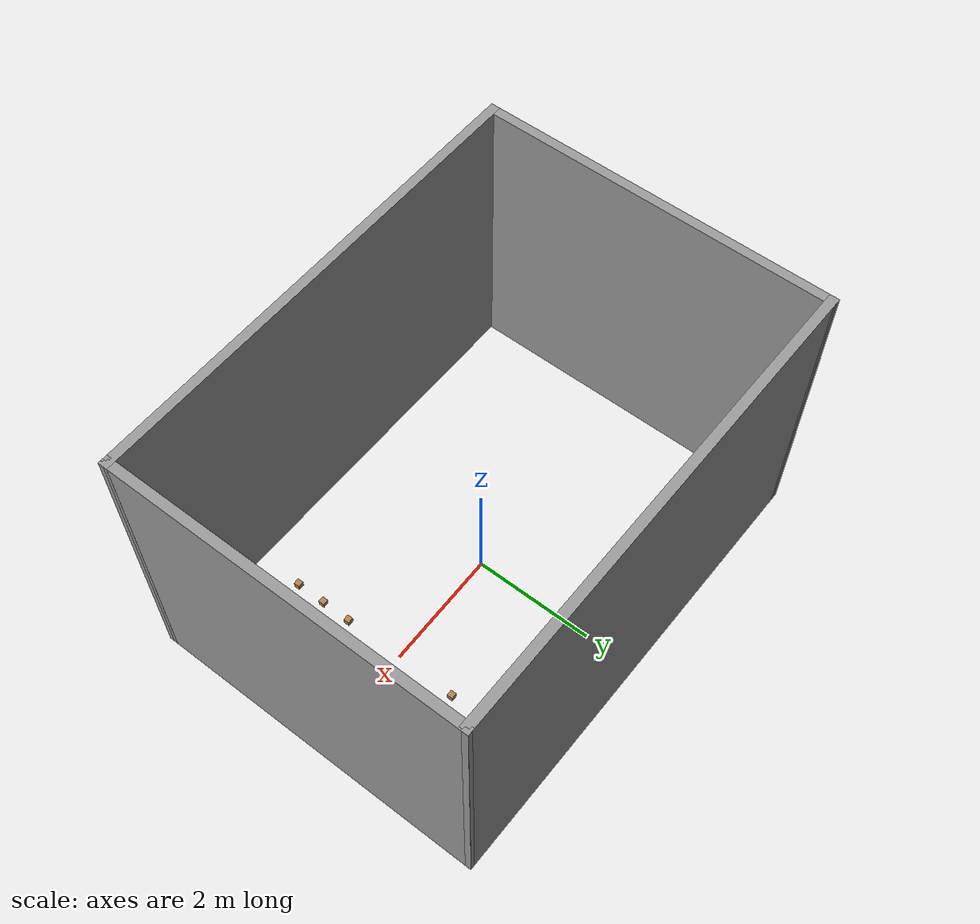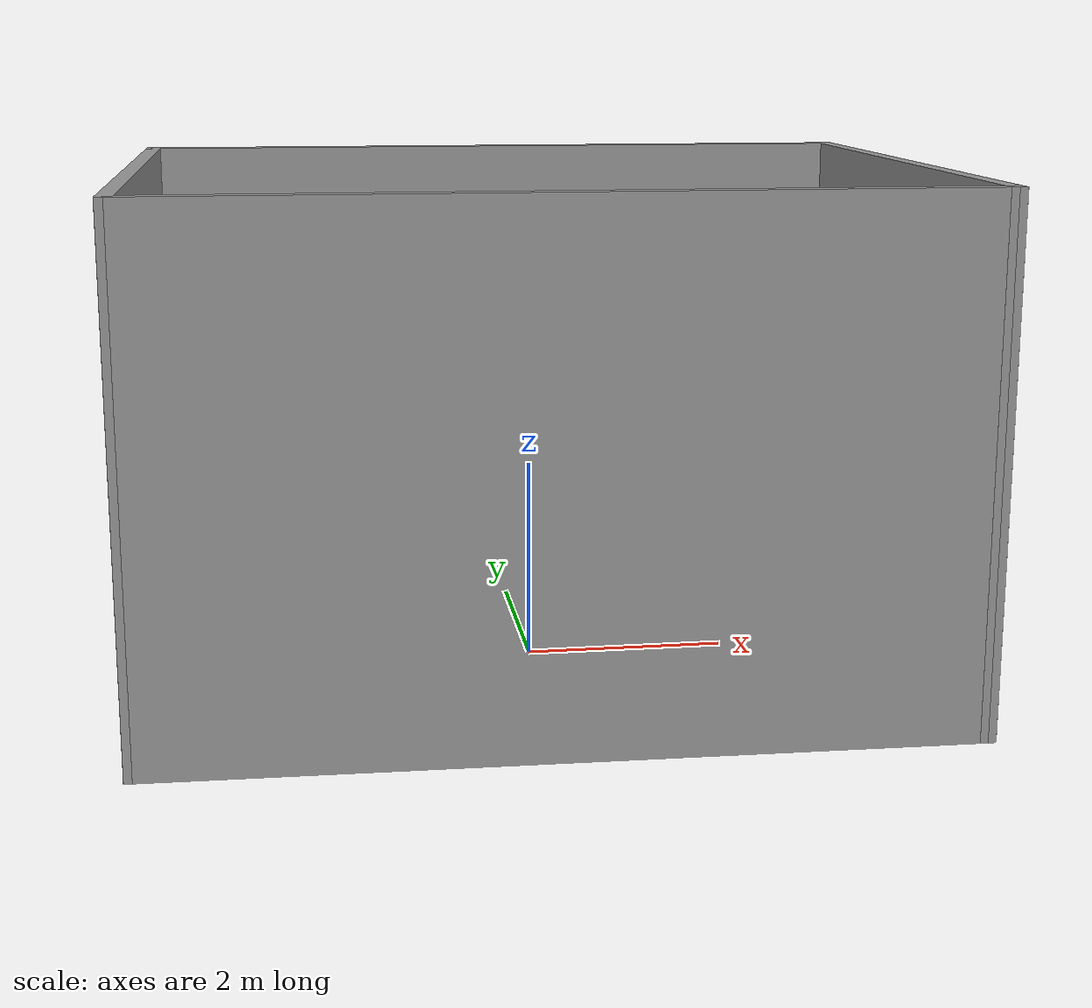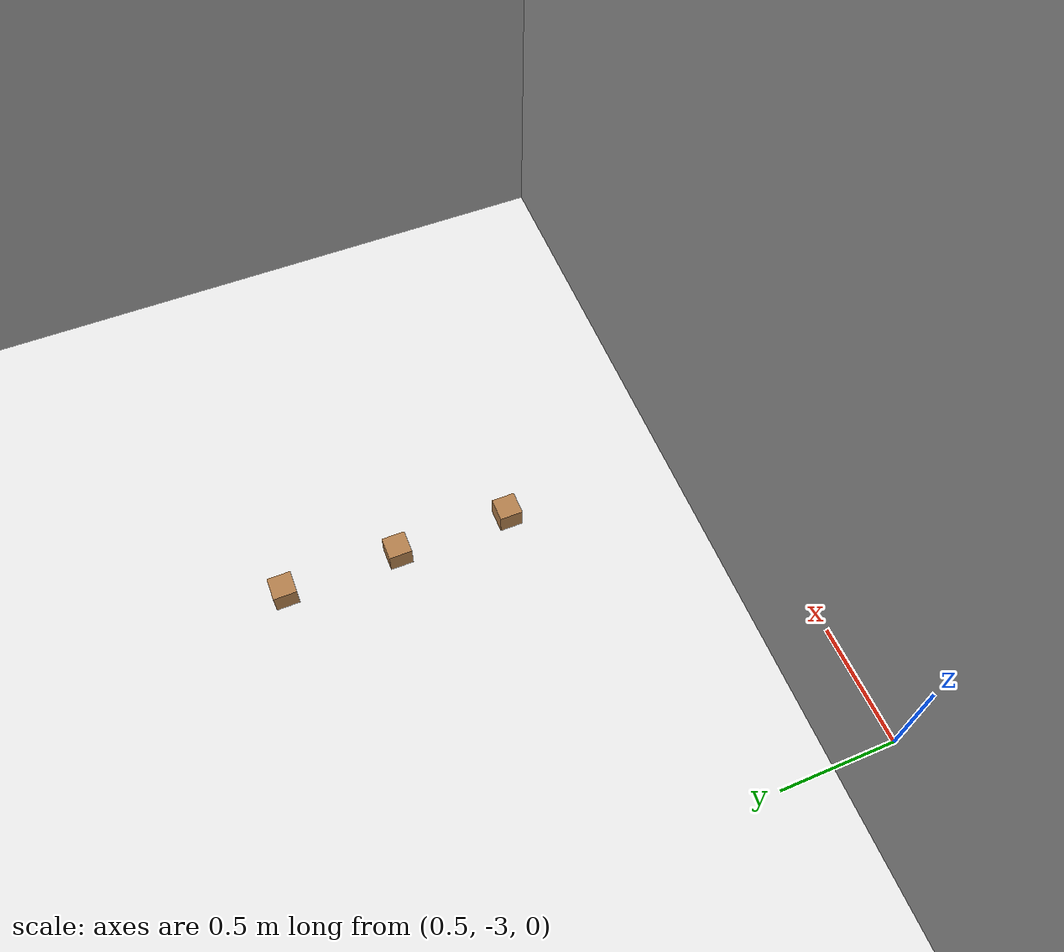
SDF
<sdf version="1.6">
 <world name="default">
  <physics type="ode">
   <max_step_size>0.001</max_step_size>
   <real_time_update_rate>1000</real_time_update_rate>
  </physics>
  <include><uri>model://sun</uri></include>
  <include><name>simple_room__mix_1</name><uri>model://simple_room</uri></include>
  <include><name>box_3-1</name><uri>model://box_small</uri><pose>2 1.5 0 0 -0 0</pose></include>
  <include><name>box_3-2</name><uri>model://box_small</uri><pose>2 1 0 0 -0 0</pose></include>
  <include><name>box_3-3</name><uri>model://box_small</uri><pose>2 2 0 0 -0 0</pose></include>
  <include><name>box_3-4</name><uri>model://box_small</uri><pose>2 -1.5 0 0 -0 0</pose></include>
  <include><name>box_3-5</name><uri>model://box_small</uri><pose>2 -1 0 0 -0 0</pose></include>
  <include><name>box_3-6</name><uri>model://box_small</uri><pose>2 -2 0 0 -0 0</pose></include>
  <plugin name="locals_data" filename="lib_locals_publisher.so">
   <local name="start">-6.75 0 0 0 0 0</local>
   <local name="goal">6.75 0 0 0 0 0</local>
  </plugin>
 </world>
</sdf>

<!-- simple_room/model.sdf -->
<sdf version='1.7'>
  <model name='simple_room'>
    <pose>-0.0625 -0.310997 0 0 -0 0</pose>
    <link name='Wall_2'>
      <collision name='Wall_2_Collision'>
        <geometry>
          <box>
            <size>7.73542 0.15 5</size>
          </box>
        </geometry>
        <pose>0 0 2.5 0 -0 0</pose>
      </collision>
      <visual name='Wall_2_Visual'>
        <pose>0 0 2.5 0 -0 0</pose>
        <geometry>
          <box>
            <size>7.73542 0.15 5</size>
          </box>
        </geometry>
        <material>
          <script>
            <uri>file://media/materials/scripts/gazebo.material</uri>
            <name>Gazebo/Grey</name>
          </script>
          <ambient>1 1 1 1</ambient>
        </material>
        <meta>
          <layer>0</layer>
        </meta>
      </visual>
      <pose>0 -2.8 0 0 -0 -0.01292</pose>
    </link>
    <link name='Wall_3'>
      <collision name='Wall_3_Collision'>
        <geometry>
          <box>
            <size>5.75 0.15 5</size>
          </box>
        </geometry>
        <pose>0 0 2.5 0 -0 0</pose>
      </collision>
      <visual name='Wall_3_Visual'>
        <pose>0 0 2.5 0 -0 0</pose>
        <geometry>
          <box>
            <size>5.75 0.15 5</size>
          </box>
        </geometry>
        <material>
          <script>
            <uri>file://media/materials/scripts/gazebo.material</uri>
            <name>Gazebo/Grey</name>
          </script>
          <ambient>1 1 1 1</ambient>
        </material>
        <meta>
          <layer>0</layer>
        </meta>
      </visual>
      <pose>3.7925 -0.049003 0 0 -0 1.5708</pose>
    </link>
    <link name='Wall_4'>
      <collision name='Wall_4_Collision'>
        <geometry>
          <box>
            <size>7.73632 0.15 5</size>
          </box>
        </geometry>
        <pose>0 0 2.5 0 -0 0</pose>
      </collision>
      <visual name='Wall_4_Visual'>
        <pose>0 0 2.5 0 -0 0</pose>
        <geometry>
          <box>
            <size>7.73632 0.15 5</size>
          </box>
        </geometry>
        <material>
          <script>
            <uri>file://media/materials/scripts/gazebo.material</uri>
            <name>Gazebo/Grey</name>
          </script>
          <ambient>1 1 1 1</ambient>
        </material>
        <meta>
          <layer>0</layer>
        </meta>
      </visual>
      <pose>0 2.8 0 0 -0 3.12867</pose>
    </link>
    <link name='Wall_5'>
      <collision name='Wall_5_Collision'>
        <geometry>
          <box>
            <size>5.75 0.15 5</size>
          </box>
        </geometry>
        <pose>0 0 2.5 0 -0 0</pose>
      </collision>
      <visual name='Wall_5_Visual'>
        <pose>0 0 2.5 0 -0 0</pose>
        <geometry>
          <box>
            <size>5.75 0.15 5</size>
          </box>
        </geometry>
        <material>
          <script>
            <uri>file://media/materials/scripts/gazebo.material</uri>
            <name>Gazebo/Grey</name>
          </script>
          <ambient>1 1 1 1</ambient>
        </material>
        <meta>
          <layer>0</layer>
        </meta>
      </visual>
      <pose>-3.7925 0.048997 0 0 -0 -1.5708</pose>
    </link>
    <static>1</static>
  </model>
</sdf>

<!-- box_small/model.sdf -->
<sdf version='1.6'>

  <model name='box_small'>
    <pose>0 0 0 0 0 0</pose>
    <link name='link'>
      <inertial>
        <mass>0.1</mass>
        <inertia>
          <ixx>0.166667</ixx>
          <ixy>0</ixy>
          <ixz>0</ixz>
          <iyy>0.166667</iyy>
          <iyz>0</iyz>
          <izz>0.166667</izz>
        </inertia>
      </inertial>
      <collision name='collision'>
        <geometry>
          <box>
            <size>0.1 0.1 0.1</size>
          </box>
        </geometry>
        <max_contacts>10</max_contacts>
        <surface>
          <contact>
            <ode/>
          </contact>
          <bounce/>
          <friction>
            <torsional>
              <ode/>
            </torsional>
            <ode/>
          </friction>
        </surface>
      </collision>
      <visual name='visual'>
        <geometry>
          <box>
            <size>0.1 0.1 0.1</size>
          </box>
        </geometry>
        <material>
          <script>
            <uri>file://media/materials/scripts/gazebo.material</uri>
            <name>Gazebo/Wood</name>
          </script>
        </material>
      </visual>
      <self_collide>0</self_collide>
      <enable_wind>0</enable_wind>
      <kinematic>0</kinematic>
    </link>
  </model>

</sdf>
